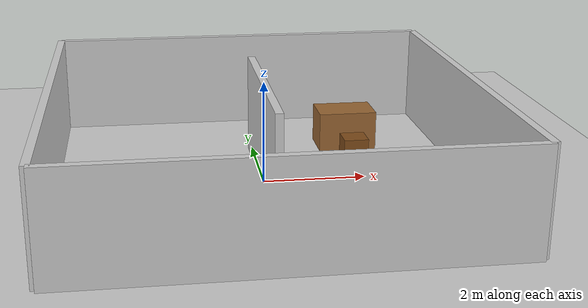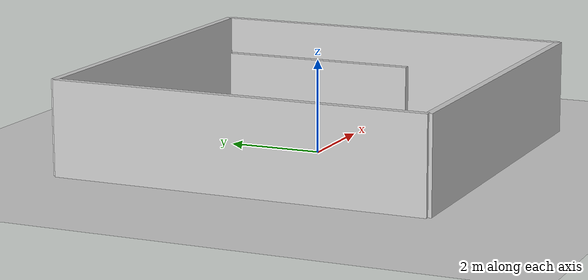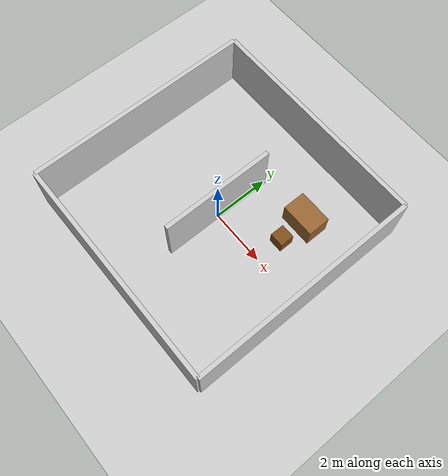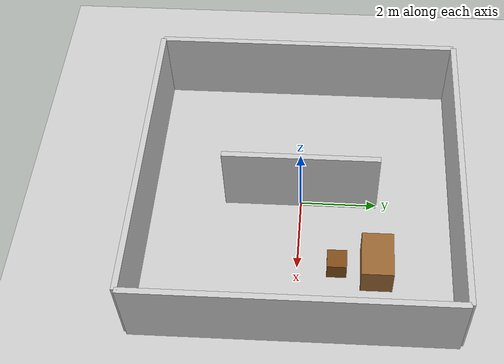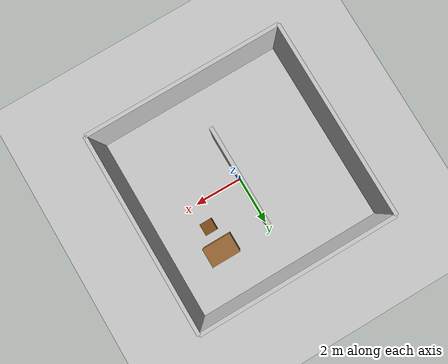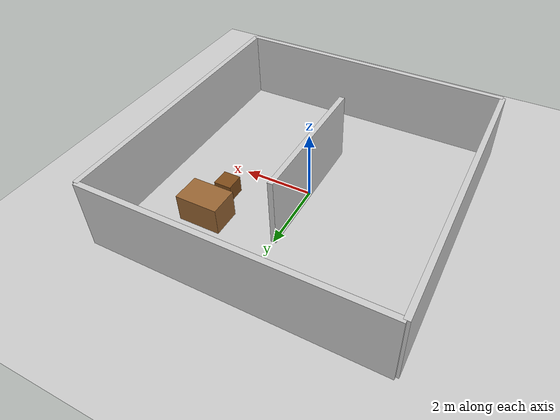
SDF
<?xml version="1.0" ?>
<sdf version="1.6">
  <world name="house">

    <!-- Physics settings -->
    <physics type="ode">
      <real_time_update_rate>1000.0</real_time_update_rate>
      <max_step_size>0.001</max_step_size>
      <real_time_factor>1</real_time_factor>
    </physics>

    <!-- Lighting -->
    <include>
      <uri>model://sun</uri>
    </include>

    <!-- Ground plane -->
    <include>
      <uri>model://ground_plane</uri>
    </include>

    <!-- Walls -->
    <!-- Front wall -->
    <model name="wall_front">
      <static>true</static>
      <pose>4 0 1 0 0 0</pose>
      <link name="link">
        <collision name="collision">
          <geometry>
            <box><size>0.15 8 2</size></box>
          </geometry>
        </collision>
        <visual name="visual">
          <geometry>
            <box><size>0.15 8 2</size></box>
          </geometry>
          <material>
            <ambient>0.8 0.8 0.8 1</ambient>
          </material>
        </visual>
      </link>
    </model>

    <!-- Back wall -->
    <model name="wall_back">
      <static>true</static>
      <pose>-4 0 1 0 0 0</pose>
      <link name="link">
        <collision name="collision">
          <geometry>
            <box><size>0.15 8 2</size></box>
          </geometry>
        </collision>
        <visual name="visual">
          <geometry>
            <box><size>0.15 8 2</size></box>
          </geometry>
          <material>
            <ambient>0.8 0.8 0.8 1</ambient>
          </material>
        </visual>
      </link>
    </model>

    <!-- Left wall -->
    <model name="wall_left">
      <static>true</static>
      <pose>0 4 1 0 0 0</pose>
      <link name="link">
        <collision name="collision">
          <geometry>
            <box><size>8 0.15 2</size></box>
          </geometry>
        </collision>
        <visual name="visual">
          <geometry>
            <box><size>8 0.15 2</size></box>
          </geometry>
          <material>
            <ambient>0.8 0.8 0.8 1</ambient>
          </material>
        </visual>
      </link>
    </model>

    <!-- Right wall -->
    <model name="wall_right">
      <static>true</static>
      <pose>0 -4 1 0 0 0</pose>
      <link name="link">
        <collision name="collision">
          <geometry>
            <box><size>8 0.15 2</size></box>
          </geometry>
        </collision>
        <visual name="visual">
          <geometry>
            <box><size>8 0.15 2</size></box>
          </geometry>
          <material>
            <ambient>0.8 0.8 0.8 1</ambient>
          </material>
        </visual>
      </link>
    </model>

    <!-- Interior wall -->
    <model name="wall_interior">
      <static>true</static>
      <pose>0 0 1 0 0 0</pose>
      <link name="link">
        <collision name="collision">
          <geometry>
            <box><size>0.15 4 2</size></box>
          </geometry>
        </collision>
        <visual name="visual">
          <geometry>
            <box><size>0.15 4 2</size></box>
          </geometry>
          <material>
            <ambient>0.8 0.8 0.8 1</ambient>
          </material>
        </visual>
      </link>
    </model>

    <!-- Table -->
    <model name="table">
      <static>true</static>
      <pose>2 2 0.4 0 0 0</pose>
      <link name="link">
        <collision name="collision">
          <geometry>
            <box><size>1.2 0.8 0.8</size></box>
          </geometry>
        </collision>
        <visual name="visual">
          <geometry>
            <box><size>1.2 0.8 0.8</size></box>
          </geometry>
          <material>
            <ambient>0.6 0.4 0.2 1</ambient>
          </material>
        </visual>
      </link>
    </model>

    <!-- Chair -->
    <model name="chair">
      <static>true</static>
      <pose>2 1 0.25 0 0 0</pose>
      <link name="link">
        <collision name="collision">
          <geometry>
            <box><size>0.5 0.5 0.5</size></box>
          </geometry>
        </collision>
        <visual name="visual">
          <geometry>
            <box><size>0.5 0.5 0.5</size></box>
          </geometry>
          <material>
            <ambient>0.5 0.3 0.1 1</ambient>
          </material>
        </visual>
      </link>
    </model>

  </world>
</sdf>
